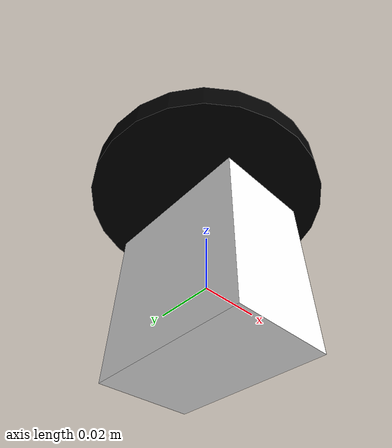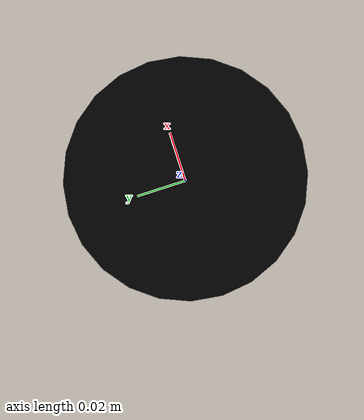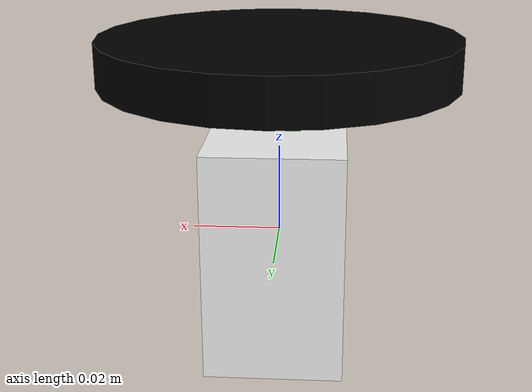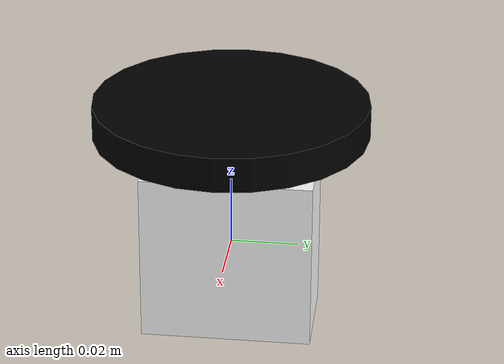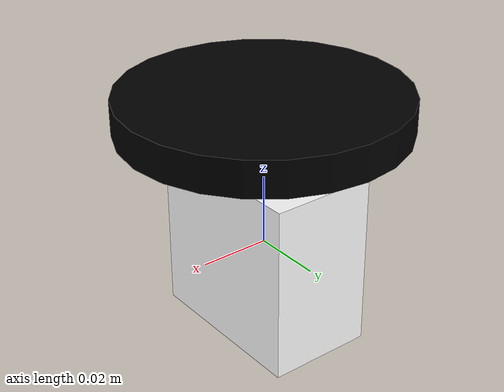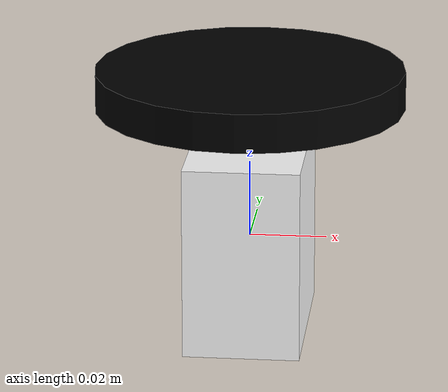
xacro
<?xml version="1.0"?>
<robot xmlns:xacro="http://www.ros.org/wiki/xacro" name="first">

  <!-- Global constants -->
  <xacro:property name="pi" value="3.1415926535897931"/>

  <!-- Included files -->
  <xacro:include filename="$(find first_description)/urdf/materials.urdf.xacro"/>
  <xacro:include filename="$(find first_description)/urdf/common.urdf.xacro"/>

  <!-- Robot properties -->
  <xacro:property name="base_width" value="0.03"/>
  <xacro:property name="base_length" value="0.05"/>
  <xacro:property name="base_height" value="0.05"/>

  <xacro:property name="wheel_width" value="0.01"/>
  <xacro:property name="wheel_radius" value="0.04"/>

  <xacro:property name="wheel_holder_size" value="0.01"/>

  <link name="base_link">
    <visual>
      <xacro:box_geometry width="${base_width}" depth="${base_height}" height="${base_length}"/>
      <xacro:white_material/>
    </visual>
    <xacro:box_collision width="${base_width}" depth="${base_height}" height="${base_length}"/>
    <xacro:box_inertia mass="100.2" width="${base_width}" depth="${base_height}" height="${base_length}"/>
  </link>

  <link name="wheel_holder">
    <visual>
      <xacro:box_geometry width="${wheel_holder_size}" height="${wheel_holder_size}" depth="${wheel_holder_size}"/>
      <xacro:green_material/>
    </visual>
    <xacro:box_collision width="${wheel_holder_size}" height="${wheel_holder_size}" depth="${wheel_holder_size}"/>
    <xacro:box_inertia mass="0.003" width="${wheel_holder_size}" height="${wheel_holder_size}"
                       depth="${wheel_holder_size}"/>
  </link>

  <joint name="base_to_wheel_holder" type="fixed">
    <parent link="base_link"/>
    <child link="wheel_holder"/>
    <origin xyz="0 0 ${base_height/2 + wheel_holder_size/2}" rpy="0 0 0" />
    <axis xyz="0 0 1" />
  </joint>

  <link name="wheel">
    <visual>
      <xacro:cylinder_geometry radius="${wheel_radius}" height="${wheel_width}"/>
      <xacro:black_material/>
    </visual>
    <xacro:cylinder_collision radius="${wheel_radius}" height="${wheel_width}"/>
    <xacro:cylinder_inertia mass="0.03" radius="${wheel_radius}" height="${wheel_width}"/>
    <dynamics damping="0.01" friction="100.0" />
  </link>

  <joint name="wheel_joint" type="continuous">
    <parent link="wheel_holder"/>
    <child link="wheel"/>
    <origin xyz="0 0 ${wheel_width/2 + wheel_holder_size/2}" rpy="0 0 0" />
    <axis xyz="0 0 1" />
    <limit effort="100" velocity="100" />
    <dynamics damping="0.01" friction="0.0" />
  </joint>

  <transmission name="wheel_transmission">
     <type>transmission_interface/SimpleTransmission</type>
     <joint name="wheel_joint">
       <hardwareInterface>EffortJointInterface</hardwareInterface>
     </joint>
     <actuator name="wheel_motor">
       <hardwareInterface>EffortJointInterface</hardwareInterface>
       <mechanicalReduction>1</mechanicalReduction>
     </actuator>
  </transmission>

</robot>

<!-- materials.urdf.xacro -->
<robot xmlns:xacro="http://www.ros.org/wiki/xacro">

   <xacro:macro name="white_material">
      <material name="white">
        <color rgba="255 255 255 1"/>
      </material>
   </xacro:macro>

   <xacro:macro name="black_material">
      <material name="black">
        <color rgba="0 0 0 1"/>
      </material>
   </xacro:macro>

   <xacro:macro name="red_material">
      <material name="red">
        <color rgba="255 0 0 1"/>
      </material>
   </xacro:macro>

   <xacro:macro name="green_material">
      <material name="green">
        <color rgba="0 255 0 1"/>
      </material>
   </xacro:macro>

</robot>

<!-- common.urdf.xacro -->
<robot xmlns:xacro="http://www.ros.org/wiki/xacro">

  <xacro:macro name="cylinder_inertia" params="mass radius height">

      <inertial>
         <mass value="${mass}" />
         <origin xyz="0 0 0" />

         <inertia  ixx="${(3*radius*radius + height*height)*mass/12}" ixy="0.0" ixz="0.0"
                   iyy="${(3*radius*radius + height*height)*mass/12}" iyz="0.0"
                   izz="${radius*radius*mass/2}" />
      </inertial>

  </xacro:macro>

  <xacro:macro name="cylinder_geometry" params="radius height">
    <geometry>
      <cylinder length="${height}" radius="${radius}"/>
    </geometry>
  </xacro:macro>

  <xacro:macro name="cylinder_collision" params="radius height">
    <collision>
      <xacro:cylinder_geometry radius="${radius}" height="${height}"/>
    </collision>
  </xacro:macro>

  <xacro:macro name="box_inertia" params="mass width height depth">

      <inertial>
         <mass value="${mass}" />
         <origin xyz="0 0 0" />

         <inertia  ixx="${(depth*depth + height*height)*mass/12}" ixy="0.0" ixz="0.0"
                   iyy="${(depth*depth + width*width)*mass/12}" iyz="0.0"
                   izz="${(width*width + height*height)*mass/12}" />
      </inertial>

  </xacro:macro>

  <xacro:macro name="box_geometry" params="width height depth">
    <geometry>
      <box size="${width} ${height} ${depth}"/>
    </geometry>
  </xacro:macro>

  <xacro:macro name="box_collision" params="width height depth">
    <collision>
      <xacro:box_geometry width="${width}" height="${height}" depth="${depth}"/>
    </collision>
  </xacro:macro>

</robot>
